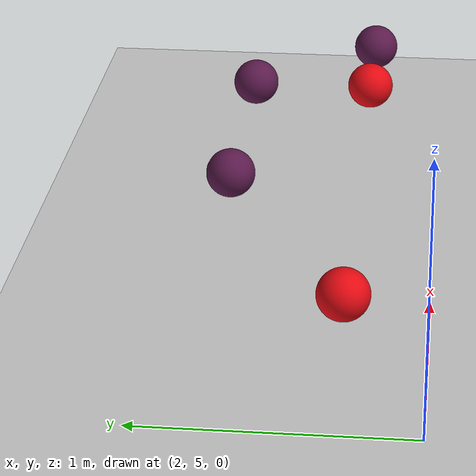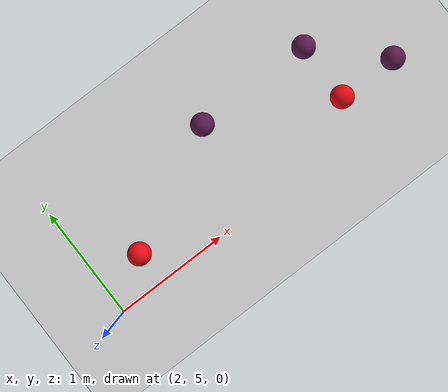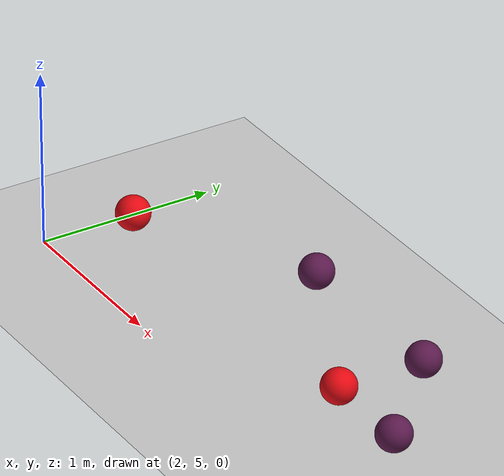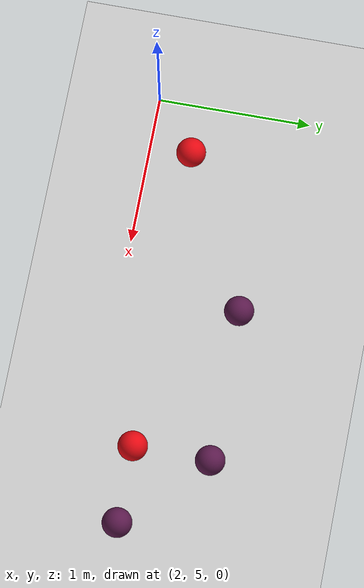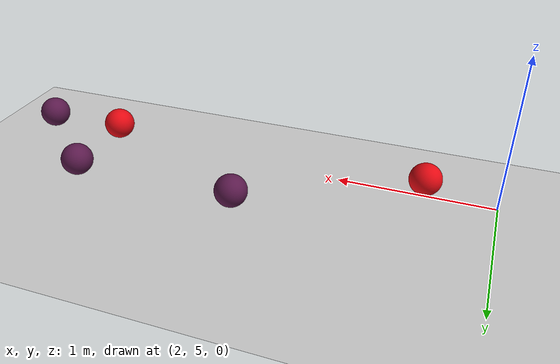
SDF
<sdf version="1.7">
 <world name="default">
  <model name="ground_plane">
   <static>1</static>
   <link name="link">
    <collision name="collision">
     <geometry><plane><normal>0 0 1</normal><size>100 100</size></plane></geometry>
     <surface>
      <contact><collide_bitmask>65535</collide_bitmask></contact>
      <friction><ode><mu>100</mu><mu2>50</mu2></ode></friction>
     </surface>
    </collision>
    <visual name="visual">
     <cast_shadows>0</cast_shadows>
     <geometry><plane><normal>0 0 1</normal><size>100 100</size></plane></geometry>
     <material>
      <script><uri>file://media/materials/scripts/gazebo.material</uri><name>Gazebo/Grey</name></script>
     </material>
    </visual>
   </link>
  </model>
  <model name="ball_empty_clone_0">
   <link name="link_1">
    <inertial>
     <mass>1</mass>
     <inertia>
      <ixx>0.166667</ixx>
      <ixy>0</ixy>
      <ixz>0</ixz>
      <iyy>0.166667</iyy>
      <iyz>0</iyz>
      <izz>0.166667</izz>
     </inertia>
    </inertial>
    <visual name="visual">
     <geometry>
      <mesh>
       <uri>/home/entity014/abu2024_ws/src/abu_description/worlds/ball_empty.dae</uri>
       <scale>1 1 1</scale>
      </mesh>
     </geometry>
    </visual>
    <collision name="collision">
     <geometry>
      <mesh>
       <uri>/home/entity014/abu2024_ws/src/abu_description/worlds/ball_empty.dae</uri>
       <scale>1 1 1</scale>
      </mesh>
     </geometry>
     <surface>
      <friction>
       <ode><mu>1</mu><mu2>1</mu2><fdir1>0 0 0</fdir1><slip1>0</slip1><slip2>0</slip2></ode>
       <torsional>
        <coefficient>1</coefficient>
        <patch_radius>0</patch_radius>
        <surface_radius>0</surface_radius>
        <use_patch_radius>1</use_patch_radius>
        <ode><slip>0</slip></ode>
       </torsional>
      </friction>
      <bounce><restitution_coefficient>0</restitution_coefficient><threshold>1e+06</threshold></bounce>
      <contact>
       <collide_without_contact>0</collide_without_contact>
       <collide_without_contact_bitmask>1</collide_without_contact_bitmask>
       <collide_bitmask>1</collide_bitmask>
       <ode>
        <soft_cfm>0</soft_cfm>
        <soft_erp>0.2</soft_erp>
        <kp>1e+13</kp>
        <kd>1</kd>
        <max_vel>0.01</max_vel>
        <min_depth>0</min_depth>
       </ode>
       <bullet>
        <split_impulse>1</split_impulse>
        <split_impulse_penetration_threshold>-0.01</split_impulse_penetration_threshold>
        <soft_cfm>0</soft_cfm>
        <soft_erp>0.2</soft_erp>
        <kp>1e+13</kp>
        <kd>1</kd>
       </bullet>
      </contact>
     </surface>
    </collision>
   </link>
   <static>0</static>
   <pose>3.43448 5.79227 0.302594 -0.167188 -0.252604 0.172278</pose>
  </model>
  <model name="ball_empty_clone_2">
   <link name="link_1">
    <inertial>
     <mass>1</mass>
     <inertia>
      <ixx>0.166667</ixx>
      <ixy>0</ixy>
      <ixz>0</ixz>
      <iyy>0.166667</iyy>
      <iyz>0</iyz>
      <izz>0.166667</izz>
     </inertia>
    </inertial>
    <visual name="visual">
     <geometry>
      <mesh>
       <uri>/home/entity014/abu2024_ws/src/abu_description/worlds/ball_empty.dae</uri>
       <scale>1 1 1</scale>
      </mesh>
     </geometry>
    </visual>
    <collision name="collision">
     <geometry>
      <mesh>
       <uri>/home/entity014/abu2024_ws/src/abu_description/worlds/ball_empty.dae</uri>
       <scale>1 1 1</scale>
      </mesh>
     </geometry>
     <surface>
      <friction>
       <ode><mu>1</mu><mu2>1</mu2><fdir1>0 0 0</fdir1><slip1>0</slip1><slip2>0</slip2></ode>
       <torsional>
        <coefficient>1</coefficient>
        <patch_radius>0</patch_radius>
        <surface_radius>0</surface_radius>
        <use_patch_radius>1</use_patch_radius>
        <ode><slip>0</slip></ode>
       </torsional>
      </friction>
      <bounce><restitution_coefficient>0</restitution_coefficient><threshold>1e+06</threshold></bounce>
      <contact>
       <collide_without_contact>0</collide_without_contact>
       <collide_without_contact_bitmask>1</collide_without_contact_bitmask>
       <collide_bitmask>1</collide_bitmask>
       <ode>
        <soft_cfm>0</soft_cfm>
        <soft_erp>0.2</soft_erp>
        <kp>1e+13</kp>
        <kd>1</kd>
        <max_vel>0.01</max_vel>
        <min_depth>0</min_depth>
       </ode>
       <bullet>
        <split_impulse>1</split_impulse>
        <split_impulse_penetration_threshold>-0.01</split_impulse_penetration_threshold>
        <soft_cfm>0</soft_cfm>
        <soft_erp>0.2</soft_erp>
        <kp>1e+13</kp>
        <kd>1</kd>
       </bullet>
      </contact>
     </surface>
    </collision>
   </link>
   <static>0</static>
   <pose>4.43383 5.79132 0.302507 0.912243 0.177079 0.307275</pose>
  </model>
  <model name="ball_empty_clone_3">
   <link name="link_1">
    <inertial>
     <mass>1</mass>
     <inertia>
      <ixx>0.166667</ixx>
      <ixy>0</ixy>
      <ixz>0</ixz>
      <iyy>0.166667</iyy>
      <iyz>0</iyz>
      <izz>0.166667</izz>
     </inertia>
    </inertial>
    <visual name="visual">
     <geometry>
      <mesh>
       <uri>/home/entity014/abu2024_ws/src/abu_description/worlds/ball_empty.dae</uri>
       <scale>1 1 1</scale>
      </mesh>
     </geometry>
    </visual>
    <collision name="collision">
     <geometry>
      <mesh>
       <uri>/home/entity014/abu2024_ws/src/abu_description/worlds/ball_empty.dae</uri>
       <scale>1 1 1</scale>
      </mesh>
     </geometry>
     <surface>
      <friction>
       <ode><mu>1</mu><mu2>1</mu2><fdir1>0 0 0</fdir1><slip1>0</slip1><slip2>0</slip2></ode>
       <torsional>
        <coefficient>1</coefficient>
        <patch_radius>0</patch_radius>
        <surface_radius>0</surface_radius>
        <use_patch_radius>1</use_patch_radius>
        <ode><slip>0</slip></ode>
       </torsional>
      </friction>
      <bounce><restitution_coefficient>0</restitution_coefficient><threshold>1e+06</threshold></bounce>
      <contact>
       <collide_without_contact>0</collide_without_contact>
       <collide_without_contact_bitmask>1</collide_without_contact_bitmask>
       <collide_bitmask>1</collide_bitmask>
       <ode>
        <soft_cfm>0</soft_cfm>
        <soft_erp>0.2</soft_erp>
        <kp>1e+13</kp>
        <kd>1</kd>
        <max_vel>0.01</max_vel>
        <min_depth>0</min_depth>
       </ode>
       <bullet>
        <split_impulse>1</split_impulse>
        <split_impulse_penetration_threshold>-0.01</split_impulse_penetration_threshold>
        <soft_cfm>0</soft_cfm>
        <soft_erp>0.2</soft_erp>
        <kp>1e+13</kp>
        <kd>1</kd>
       </bullet>
      </contact>
     </surface>
    </collision>
   </link>
   <static>0</static>
   <pose>4.93264 5.29364 0.302546 0.095682 0.176438 -0.095058</pose>
  </model>
  <model name="ball_red">
   <link name="link_1">
    <inertial>
     <mass>1</mass>
     <inertia>
      <ixx>0.166667</ixx>
      <ixy>0</ixy>
      <ixz>0</ixz>
      <iyy>0.166667</iyy>
      <iyz>0</iyz>
      <izz>0.166667</izz>
     </inertia>
    </inertial>
    <visual name="visual">
     <geometry>
      <mesh><uri>/home/entity014/abu2024_ws/src/abu_description/worlds/ball_red.dae</uri><scale>1 1 1</scale></mesh>
     </geometry>
    </visual>
    <collision name="collision">
     <geometry>
      <mesh><uri>/home/entity014/abu2024_ws/src/abu_description/worlds/ball_red.dae</uri><scale>1 1 1</scale></mesh>
     </geometry>
     <surface>
      <friction>
       <ode><mu>1</mu><mu2>1</mu2><fdir1>0 0 0</fdir1><slip1>0</slip1><slip2>0</slip2></ode>
       <torsional>
        <coefficient>1</coefficient>
        <patch_radius>0</patch_radius>
        <surface_radius>0</surface_radius>
        <use_patch_radius>1</use_patch_radius>
        <ode><slip>0</slip></ode>
       </torsional>
      </friction>
      <bounce><restitution_coefficient>0</restitution_coefficient><threshold>1e+06</threshold></bounce>
      <contact>
       <collide_without_contact>0</collide_without_contact>
       <collide_without_contact_bitmask>1</collide_without_contact_bitmask>
       <collide_bitmask>1</collide_bitmask>
       <ode>
        <soft_cfm>0</soft_cfm>
        <soft_erp>0.2</soft_erp>
        <kp>1e+13</kp>
        <kd>1</kd>
        <max_vel>0.01</max_vel>
        <min_depth>0</min_depth>
       </ode>
       <bullet>
        <split_impulse>1</split_impulse>
        <split_impulse_penetration_threshold>-0.01</split_impulse_penetration_threshold>
        <soft_cfm>0</soft_cfm>
        <soft_erp>0.2</soft_erp>
        <kp>1e+13</kp>
        <kd>1</kd>
       </bullet>
      </contact>
     </surface>
    </collision>
   </link>
   <static>0</static>
   <pose>2.43355 5.29381 0.302571 -0.01965 -0.127686 0.633758</pose>
  </model>
  <model name="ball_red_3">
   <link name="link_1">
    <inertial>
     <mass>1</mass>
     <inertia>
      <ixx>0.166667</ixx>
      <ixy>0</ixy>
      <ixz>0</ixz>
      <iyy>0.166667</iyy>
      <iyz>0</iyz>
      <izz>0.166667</izz>
     </inertia>
    </inertial>
    <visual name="visual">
     <geometry>
      <mesh><uri>/home/entity014/abu2024_ws/src/abu_description/worlds/ball_red.dae</uri><scale>1 1 1</scale></mesh>
     </geometry>
    </visual>
    <collision name="collision">
     <geometry>
      <mesh><uri>/home/entity014/abu2024_ws/src/abu_description/worlds/ball_red.dae</uri><scale>1 1 1</scale></mesh>
     </geometry>
     <surface>
      <friction>
       <ode><mu>1</mu><mu2>1</mu2><fdir1>0 0 0</fdir1><slip1>0</slip1><slip2>0</slip2></ode>
       <torsional>
        <coefficient>1</coefficient>
        <patch_radius>0</patch_radius>
        <surface_radius>0</surface_radius>
        <use_patch_radius>1</use_patch_radius>
        <ode><slip>0</slip></ode>
       </torsional>
      </friction>
      <bounce><restitution_coefficient>0</restitution_coefficient><threshold>1e+06</threshold></bounce>
      <contact>
       <collide_without_contact>0</collide_without_contact>
       <collide_without_contact_bitmask>1</collide_without_contact_bitmask>
       <collide_bitmask>1</collide_bitmask>
       <ode>
        <soft_cfm>0</soft_cfm>
        <soft_erp>0.2</soft_erp>
        <kp>1e+13</kp>
        <kd>1</kd>
        <max_vel>0.01</max_vel>
        <min_depth>0</min_depth>
       </ode>
       <bullet>
        <split_impulse>1</split_impulse>
        <split_impulse_penetration_threshold>-0.01</split_impulse_penetration_threshold>
        <soft_cfm>0</soft_cfm>
        <soft_erp>0.2</soft_erp>
        <kp>1e+13</kp>
        <kd>1</kd>
       </bullet>
      </contact>
     </surface>
    </collision>
   </link>
   <static>0</static>
   <pose>4.43031 5.29611 0.304856 -0.07952 0.293561 -0.187483</pose>
  </model>
 </world>
</sdf>
